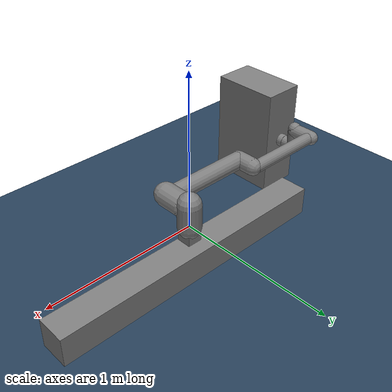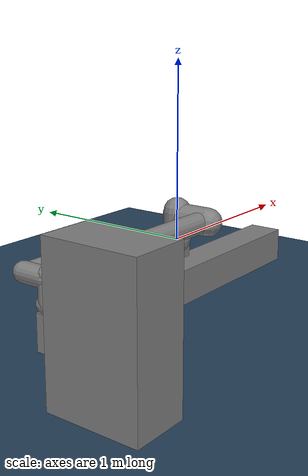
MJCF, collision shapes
<mujoco model="ur10e scene">

  <include file="ur10e.xml"/>

  <statistic center="0.4 0 0.4" extent="1"/>

  <visual>
    <headlight diffuse="0.6 0.6 0.6" ambient="0.1 0.1 0.1" specular="0 0 0"/>
    <rgba haze="0.15 0.25 0.35 1"/>
    <global azimuth="120" elevation="-20"/>
  </visual>

  <asset>
    <texture type="skybox" builtin="gradient" rgb1="0.3 0.5 0.7" rgb2="0 0 0" width="512" height="3072"/>
    <texture type="2d" name="groundplane" builtin="checker" mark="edge" rgb1="0.2 0.3 0.4" rgb2="0.1 0.2 0.3"
      markrgb="0.8 0.8 0.8" width="300" height="300"/>
    <material name="groundplane" texture="groundplane" texuniform="true" texrepeat="5 5" reflectance="0.2"/>
  </asset>

  <worldbody>
    <light pos="0 0 1.5" dir="0 0 -1" directional="true"/>
    <geom name="floor" pos="0 0 -0.5" size="0 0 0.05" type="plane" material="groundplane"/>
    <body name="box" pos="-1.2 -0.55 0">
      <freejoint />
      <!-- Control tracks well with 10 kg box welded -->
      <!-- Increasing to 15kg (beyond the payload of the 10e) results in poor tracking -->
      <geom
        type="box"
        size="0.147 0.2435 0.385"
        mass="10"
      />
    </body>

  </worldbody>

  <!-- Start with weld activated -->
  <equality>
    <weld
      name="attachment"
      body1="wrist_3_link"
      body2="box"
      active="true"
      torquescale="5"
    />
  </equality>
</mujoco>

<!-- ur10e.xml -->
<mujoco model="ur10e">
  <compiler angle="radian" meshdir="assets" autolimits="true"/>

  <option integrator="implicit" timestep="0.001">
    <flag multiccd="enable" />
  </option>

  <default>
    <default class="ur10e">
      <material specular="0.5" shininess="0.25"/>
      <joint axis="0 1 0" range="-3.1415 3.1415" armature="0.1"/>
      <position ctrlrange="-3.1415 3.1415"/>
      <general biastype="affine" ctrlrange="-3.1415 3.1415" gainprm="5000" biasprm="0 -5000 -500"/>
      <default class="rail">
        <joint damping="20" armature="10"/>
        <general
           gaintype="fixed"
           gainprm="8000"
           biastype="affine"
           biasprm="0 -8000 -8000"
           ctrlrange="-1 1"
           forcerange="-5000 5000"/>
      </default>
      <default class="size4">
        <joint damping="10"/>
        <general forcerange="-330 330"/>
      </default>
      <default class="size3">
        <joint damping="5"/>
        <general forcerange="-150 150"/>
        <default class="size3_limited">
          <joint range="-3.1415 3.1415"/>
          <general ctrlrange="-3.1415 3.1415"/>
        </default>
      </default>
      <default class="size2">
        <joint damping="2"/>
        <general forcerange="-56 56"/>
      </default>
      <default class="visual">
        <geom type="mesh" contype="0" conaffinity="0" group="2"/>
      </default>
      <default class="collision">
        <geom type="capsule" group="3"/>
        <default class="eef_collision">
          <geom type="cylinder"/>
        </default>
      </default>
      <site size="0.001" rgba="0.5 0.5 0.5 0.3" group="4"/>
    </default>
  </default>

  <asset>
    <material class="ur10e" name="black" rgba="0.033 0.033 0.033 1"/>
    <material class="ur10e" name="jointgray" rgba="0.278 0.278 0.278 1"/>
    <material class="ur10e" name="linkgray" rgba="0.82 0.82 0.82 1"/>
    <material class="ur10e" name="urblue" rgba="0.49 0.678 0.8 1"/>

    <mesh file="base_0.obj"/>
    <mesh file="base_1.obj"/>
    <mesh file="shoulder_0.obj"/>
    <mesh file="shoulder_1.obj"/>
    <mesh file="shoulder_2.obj"/>
    <mesh file="upperarm_0.obj"/>
    <mesh file="upperarm_1.obj"/>
    <mesh file="upperarm_2.obj"/>
    <mesh file="upperarm_3.obj"/>
    <mesh file="forearm_0.obj"/>
    <mesh file="forearm_1.obj"/>
    <mesh file="forearm_2.obj"/>
    <mesh file="forearm_3.obj"/>
    <mesh file="wrist1_0.obj"/>
    <mesh file="wrist1_1.obj"/>
    <mesh file="wrist1_2.obj"/>
    <mesh file="wrist2_0.obj"/>
    <mesh file="wrist2_1.obj"/>
    <mesh file="wrist2_2.obj"/>
    <mesh file="wrist3.obj"/>
  </asset>

  <worldbody>
    <light name="spotlight" mode="targetbodycom" target="wrist_2_link" pos="0 -1 2"/>
    <body name="rail" pos="0 0 -0.25" childclass="ur10e">
      <geom
        type="box"
        size="1 0.1 0.1"
        mass="100"
      />
      <body name="rail_slide" pos="0 0 0.2" childclass="ur10e">
        <geom
          type="box"
          size="0.05 0.05 0.05"
          mass="25"
        />
        <joint name="rail" type="slide" class="rail" axis="1 0 0"/>
        <body name="base" quat="0 0 0 -1" childclass="ur10e">
          <inertial mass="4.0" pos="0 0 0" diaginertia="0.0061063308908 0.0061063308908 0.01125"/>
          <geom mesh="base_0" material="black" class="visual"/>
          <geom mesh="base_1" material="jointgray" class="visual"/>
          <body name="shoulder_link" pos="0 0 0.181">
            <inertial pos="0 0 0" mass="7.778" diaginertia="0.0314743 0.0314743 0.0218756"/>
            <joint name="shoulder_pan_joint" class="size4" axis="0 0 1"/>
            <geom mesh="shoulder_0" material="urblue" class="visual"/>
            <geom mesh="shoulder_1" material="black" class="visual"/>
            <geom mesh="shoulder_2" material="jointgray" class="visual"/>
            <geom class="collision" size="0.078 0.08" pos="0 0 -0.05"/>
            <body name="upper_arm_link" pos="0 0.176 0" quat="1 0 1 0">
              <inertial pos="0 0 0.3065" mass="12.93" diaginertia="0.423074 0.423074 0.0363656"/>
              <joint name="shoulder_lift_joint" class="size4"/>
              <geom mesh="upperarm_0" material="black" class="visual"/>
              <geom mesh="upperarm_1" material="jointgray" class="visual"/>
              <geom mesh="upperarm_2" material="urblue" class="visual"/>
              <geom mesh="upperarm_3" material="linkgray" class="visual"/>
              <geom class="collision" pos="0 -0.05 0" quat="1 1 0 0" size="0.078 0.08"/>
              <geom class="collision" size="0.06 0.3" pos="0 0 0.3"/>
              <body name="forearm_link" pos="0 -0.137 0.613">
                <inertial pos="0 0 0.2855" mass="3.87" diaginertia="0.11059 0.11059 0.0108844"/>
                <joint name="elbow_joint" class="size3_limited"/>
                <geom mesh="forearm_0" material="urblue" class="visual"/>
                <geom mesh="forearm_1" material="black" class="visual"/>
                <geom mesh="forearm_2" material="jointgray" class="visual"/>
                <geom mesh="forearm_3" material="linkgray" class="visual"/>
                <geom class="collision" pos="0 0.08 0" quat="1 1 0 0" size="0.058 0.065"/>
                <geom class="collision" size="0.043 0.28" pos="0 0 0.29"/>
                <body name="wrist_1_link" pos="0 0 0.571" quat="1 0 1 0">
                  <inertial pos="0 0.135 0" quat="0.5 0.5 -0.5 0.5" mass="1.96"
                    diaginertia="0.0055125 0.00510825 0.00510825"/>
                  <joint name="wrist_1_joint" class="size2"/>
                  <geom mesh="wrist1_0" material="black" class="visual"/>
                  <geom mesh="wrist1_1" material="urblue" class="visual"/>
                  <geom mesh="wrist1_2" material="jointgray" class="visual"/>
                  <geom class="collision" pos="0 0.06 0" quat="1 1 0 0" size="0.05 0.07"/>
                  <body name="wrist_2_link" pos="0 0.135 0">
                    <inertial pos="0 0 0.12" quat="0.5 0.5 -0.5 0.5" mass="1.96"
                      diaginertia="0.0055125 0.00510825 0.00510825"/>
                    <joint name="wrist_2_joint" axis="0 0 1" class="size2"/>
                    <geom mesh="wrist2_0" material="black" class="visual"/>
                    <geom mesh="wrist2_1" material="urblue" class="visual"/>
                    <geom mesh="wrist2_2" material="jointgray" class="visual"/>
                    <geom class="collision" size="0.046 0.065" pos="0 0 0.05"/>
                    <geom class="collision" pos="0 0.028 0.12" quat="1 1 0 0" size="0.046 0.043"/>
                    <body name="wrist_3_link" pos="0 0 0.12">
                      <inertial pos="0 0.092 0" quat="0 1 -1 0" mass="0.202"
                        diaginertia="0.000204525 0.000144346 0.000144346"/>
                      <joint name="wrist_3_joint" class="size2"/>
                      <geom material="linkgray" mesh="wrist3" class="visual"/>
                      <geom class="eef_collision" pos="0 0.097 0" quat="1 1 0 0" size="0.046 0.02"/>
                      <site name="attachment_site" pos="0 0.1 0" quat="-1 1 0 0"/>
                    </body>
                  </body>
                </body>
              </body>
            </body>
          </body>
        </body>
      </body>
    </body>
  </worldbody>

  <actuator>
    <general class="rail" name="rail" joint="rail"/>
    <general class="size4" name="shoulder_pan" joint="shoulder_pan_joint"/>
    <general class="size4" name="shoulder_lift" joint="shoulder_lift_joint"/>
    <general class="size3_limited" name="elbow" joint="elbow_joint"/>
    <general class="size2" name="wrist_1" joint="wrist_1_joint"/>
    <general class="size2" name="wrist_2" joint="wrist_2_joint"/>
    <general class="size2" name="wrist_3" joint="wrist_3_joint"/>
  </actuator>
</mujoco>
